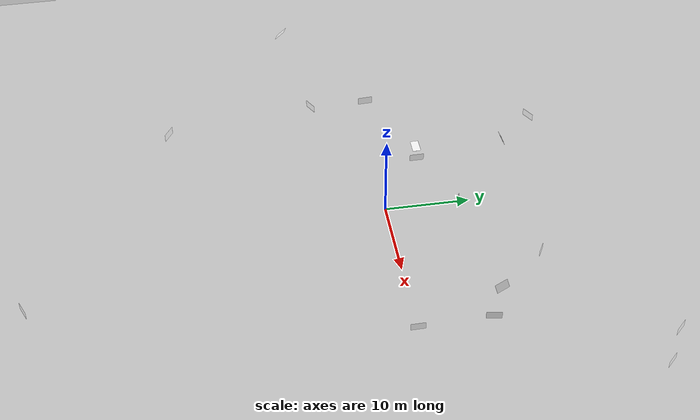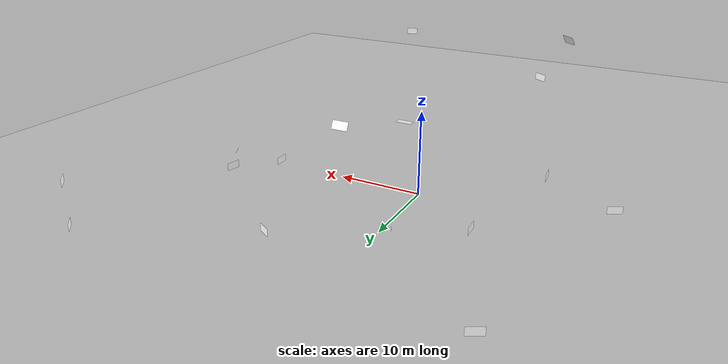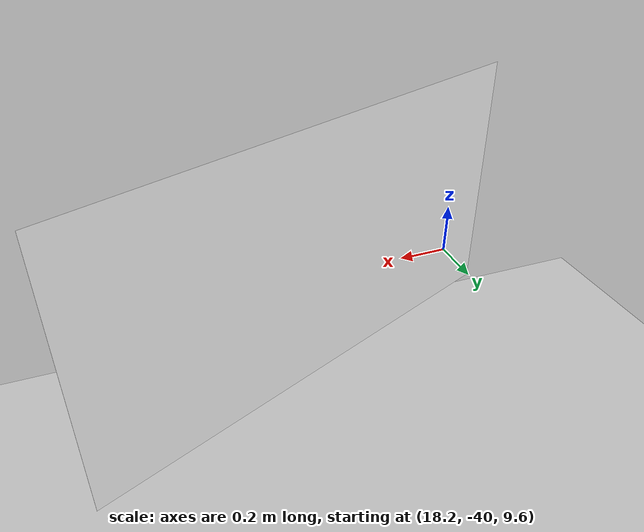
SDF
<sdf version="1.6">
 <world name="simslides">
  <plugin filename="ignition-gazebo-physics-system" name="ignition::gazebo::systems::Physics"/>
  <plugin filename="ignition-gazebo-user-commands-system" name="ignition::gazebo::systems::UserCommands"/>
  <plugin filename="ignition-gazebo-scene-broadcaster-system" name="ignition::gazebo::systems::SceneBroadcaster"/>
  <plugin filename="ignition-gazebo-sensors-system" name="ignition::gazebo::systems::Sensors">
   <engine>ogre</engine>
  </plugin>
  <light type="directional" name="sun">
   <pose>0 0 10 0 0 0</pose>
   <diffuse>0.3 0.3 0.3 1</diffuse>
   <specular>0 0 0 1</specular>
   <attenuation>
    <range>1000</range>
    <constant>0.9</constant>
    <linear>0.01</linear>
    <quadratic>0.001</quadratic>
   </attenuation>
   <direction>-0.5 0.1 -0.9</direction>
  </light>
  <include><uri>https://fuel.ignitionrobotics.org/1.0/OpenRobotics/models/Ground Plane</uri></include>
  <include>
   <pose>-0.9 9 0 0 0 -0.73</pose>
   <uri>https://fuel.ignitionrobotics.org/1.0/chapulina/models/Extinguisher PBR</uri>
  </include>
  <model name="slide-0">
   <pose>-12.86 -10.25 17 -0.45 0 -0.74</pose>
   <static>1</static>
   <link name="link">
    <pose>0 0 0.45 0 0 0</pose>
    <visual name="visual">
     <cast_shadows>0</cast_shadows>
     <geometry><box><size>1.7 0.001 0.9</size></box></geometry>
     <material>
      <diffuse>1 1 1 1</diffuse>
      <emissive>0.5 0.5 0.5 1</emissive>
      <pbr>
       <metal><albedo_map>slides/slide-0.png</albedo_map><emissive_map>slides/slide-0.png</emissive_map></metal>
      </pbr>
     </material>
    </visual>
   </link>
  </model>
  <model name="slide-1">
   <pose>-14 0 5 0 0 -1.52</pose>
   <static>1</static>
   <link name="link">
    <pose>0 0 0.45 0 0 0</pose>
    <visual name="visual">
     <cast_shadows>0</cast_shadows>
     <geometry><box><size>1.7 0.001 0.9</size></box></geometry>
     <material>
      <diffuse>1 1 1 1</diffuse>
      <emissive>0.5 0.5 0.5 1</emissive>
      <pbr>
       <metal><albedo_map>slides/slide-1.png</albedo_map><emissive_map>slides/slide-1.png</emissive_map></metal>
      </pbr>
     </material>
    </visual>
   </link>
  </model>
  <model name="slide-2">
   <pose>10 16 0 0 0 2.63</pose>
   <static>1</static>
   <link name="link">
    <pose>0 0 0.45 0 0 0</pose>
    <visual name="visual">
     <cast_shadows>0</cast_shadows>
     <geometry><box><size>1.7 0.001 0.9</size></box></geometry>
     <material>
      <diffuse>1 1 1 1</diffuse>
      <emissive>0.5 0.5 0.5 1</emissive>
      <pbr>
       <metal><albedo_map>slides/slide-2.png</albedo_map><emissive_map>slides/slide-2.png</emissive_map></metal>
      </pbr>
     </material>
    </visual>
   </link>
  </model>
  <model name="slide-3">
   <pose>20.4 7.8 1.8 0 0 1.4</pose>
   <static>1</static>
   <link name="link">
    <pose>0 0 0.45 0 0 0</pose>
    <visual name="visual">
     <cast_shadows>0</cast_shadows>
     <geometry><box><size>1.7 0.001 0.9</size></box></geometry>
     <material>
      <diffuse>1 1 1 1</diffuse>
      <emissive>0.5 0.5 0.5 1</emissive>
      <pbr>
       <metal><albedo_map>slides/slide-3.png</albedo_map><emissive_map>slides/slide-3.png</emissive_map></metal>
      </pbr>
     </material>
    </visual>
   </link>
  </model>
  <model name="slide-4">
   <pose>18.9 -39.6 9.5 0 0 0.4</pose>
   <static>1</static>
   <link name="link">
    <pose>0 0 0.45 0 0 0</pose>
    <visual name="visual">
     <cast_shadows>0</cast_shadows>
     <geometry><box><size>1.7 0.001 0.9</size></box></geometry>
     <material>
      <diffuse>1 1 1 1</diffuse>
      <emissive>0.5 0.5 0.5 1</emissive>
      <pbr>
       <metal><albedo_map>slides/slide-4.png</albedo_map><emissive_map>slides/slide-4.png</emissive_map></metal>
      </pbr>
     </material>
    </visual>
   </link>
  </model>
  <model name="slide-5">
   <pose>18.9 -39.6 9.5 0 0 0.4</pose>
   <static>1</static>
   <link name="link">
    <pose>0 0 0.45 0 0 0</pose>
    <visual name="visual">
     <cast_shadows>0</cast_shadows>
     <geometry><box><size>1.7 0.001 0.9</size></box></geometry>
     <material>
      <diffuse>1 1 1 1</diffuse>
      <emissive>0.5 0.5 0.5 1</emissive>
      <pbr>
       <metal><albedo_map>slides/slide-5.png</albedo_map><emissive_map>slides/slide-5.png</emissive_map></metal>
      </pbr>
     </material>
    </visual>
   </link>
  </model>
  <model name="slide-6">
   <pose>-7 -24 8.6 0 0 -0.55</pose>
   <static>1</static>
   <link name="link">
    <pose>0 0 0.45 0 0 0</pose>
    <visual name="visual">
     <transparency>0.01</transparency>
     <cast_shadows>0</cast_shadows>
     <geometry><box><size>1.7 0.001 0.9</size></box></geometry>
     <material>
      <diffuse>1 1 1 1</diffuse>
      <emissive>0.5 0.5 0.5 1</emissive>
      <pbr>
       <metal><albedo_map>slides/slide-6.png</albedo_map><emissive_map>slides/slide-6.png</emissive_map></metal>
      </pbr>
     </material>
    </visual>
   </link>
  </model>
  <model name="slide-7">
   <pose>-20.3 -6 0 0 0 0.5</pose>
   <static>1</static>
   <link name="link">
    <pose>0 0 0.45 0 0 0</pose>
    <visual name="visual">
     <cast_shadows>0</cast_shadows>
     <geometry><box><size>1.7 0.001 0.9</size></box></geometry>
     <material>
      <diffuse>1 1 1 1</diffuse>
      <emissive>0.5 0.5 0.5 1</emissive>
      <pbr>
       <metal><albedo_map>slides/slide-7.png</albedo_map><emissive_map>slides/slide-7.png</emissive_map></metal>
      </pbr>
     </material>
    </visual>
   </link>
  </model>
  <model name="slide-8">
   <pose>3.2 12.5 11.3 -0.46 0 -3.11</pose>
   <static>1</static>
   <link name="link">
    <pose>0 0 0.45 0 0 0</pose>
    <visual name="visual">
     <cast_shadows>0</cast_shadows>
     <transparency>0.01</transparency>
     <geometry><box><size>1.7 0.001 0.9</size></box></geometry>
     <material>
      <diffuse>1 1 1 1</diffuse>
      <emissive>0.5 0.5 0.5 1</emissive>
      <pbr>
       <metal><albedo_map>slides/slide-8.png</albedo_map><emissive_map>slides/slide-8.png</emissive_map></metal>
      </pbr>
     </material>
    </visual>
   </link>
  </model>
  <model name="slide-9">
   <pose>-8.15 5.4 0 0 0 -1.57</pose>
   <static>1</static>
   <link name="link">
    <pose>0 0 0.45 0 0 0</pose>
    <visual name="visual">
     <cast_shadows>0</cast_shadows>
     <transparency>0.01</transparency>
     <geometry><box><size>1.7 0.001 0.9</size></box></geometry>
     <material>
      <diffuse>1 1 1 1</diffuse>
      <emissive>0.5 0.5 0.5 1</emissive>
      <pbr>
       <metal><albedo_map>slides/slide-9.png</albedo_map><emissive_map>slides/slide-9.png</emissive_map></metal>
      </pbr>
     </material>
    </visual>
   </link>
  </model>
  <model name="slide-10">
   <pose>-14 21 0 0 0 -2.64</pose>
   <static>1</static>
   <link name="link">
    <pose>0 0 0.45 0 0 0</pose>
    <visual name="visual">
     <cast_shadows>0</cast_shadows>
     <geometry><box><size>1.7 0.001 0.9</size></box></geometry>
     <material>
      <diffuse>1 1 1 1</diffuse>
      <emissive>0.5 0.5 0.5 1</emissive>
      <pbr>
       <metal><albedo_map>slides/slide-10.png</albedo_map><emissive_map>slides/slide-10.png</emissive_map></metal>
      </pbr>
     </material>
    </visual>
   </link>
  </model>
  <model name="slide-11">
   <pose>0.55 2.73 9.71 -1.54 0 0</pose>
   <static>1</static>
   <link name="link">
    <pose>0 0 0.45 0 0 0</pose>
    <visual name="visual">
     <cast_shadows>0</cast_shadows>
     <transparency>0.01</transparency>
     <geometry><box><size>1.7 0.001 0.9</size></box></geometry>
     <material>
      <diffuse>1 1 1 1</diffuse>
      <emissive>0.5 0.5 0.5 1</emissive>
      <pbr>
       <metal><albedo_map>slides/slide-11.png</albedo_map><emissive_map>slides/slide-11.png</emissive_map></metal>
      </pbr>
     </material>
    </visual>
   </link>
  </model>
  <model name="slide-12">
   <pose>19 0 0 0 0 1.57</pose>
   <static>1</static>
   <link name="link">
    <pose>0 0 0.45 0 0 0</pose>
    <visual name="visual">
     <cast_shadows>0</cast_shadows>
     <geometry><box><size>1.7 0.001 0.9</size></box></geometry>
     <material>
      <diffuse>1 1 1 1</diffuse>
      <emissive>0.5 0.5 0.5 1</emissive>
      <pbr>
       <metal><albedo_map>slides/slide-12.png</albedo_map><emissive_map>slides/slide-12.png</emissive_map></metal>
      </pbr>
     </material>
    </visual>
   </link>
  </model>
  <model name="slide-13">
   <pose>28 25 0 0 0 -0.8</pose>
   <static>1</static>
   <link name="link">
    <pose>0 0 0.45 0 0 0</pose>
    <visual name="visual">
     <cast_shadows>0</cast_shadows>
     <transparency>0.01</transparency>
     <geometry><box><size>1.7 0.001 0.9</size></box></geometry>
     <material>
      <diffuse>1 1 1 1</diffuse>
      <emissive>0.5 0.5 0.5 1</emissive>
      <pbr>
       <metal><albedo_map>slides/slide-13.png</albedo_map><emissive_map>slides/slide-13.png</emissive_map></metal>
      </pbr>
     </material>
    </visual>
   </link>
  </model>
  <model name="slide-14">
   <pose>28 25 5 0 0 -0.8</pose>
   <static>1</static>
   <link name="link">
    <pose>0 0 0.45 0 0 0</pose>
    <visual name="visual">
     <cast_shadows>0</cast_shadows>
     <geometry><box><size>1.7 0.001 0.9</size></box></geometry>
     <material>
      <diffuse>1 1 1 1</diffuse>
      <emissive>0.5 0.5 0.5 1</emissive>
      <pbr>
       <metal><albedo_map>slides/slide-14.png</albedo_map><emissive_map>slides/slide-14.png</emissive_map></metal>
      </pbr>
     </material>
    </visual>
   </link>
  </model>
  <model name="slide-15">
   <pose>19 9 4.408 -0.5499 0 2.04</pose>
   <static>1</static>
   <link name="link">
    <pose>0 0 0.45 0 0 0</pose>
    <visual name="visual">
     <cast_shadows>0</cast_shadows>
     <transparency>0.01</transparency>
     <geometry><box><size>1.7 0.001 0.9</size></box></geometry>
     <material>
      <diffuse>1 1 1 1</diffuse>
      <emissive>0.5 0.5 0.5 1</emissive>
      <pbr>
       <metal><albedo_map>slides/slide-15.png</albedo_map><emissive_map>slides/slide-15.png</emissive_map></metal>
      </pbr>
     </material>
    </visual>
   </link>
  </model>
 </world>
</sdf>

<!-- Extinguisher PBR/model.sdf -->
<sdf version="1.6">
    <model name="Extinguisher PBR">
        <static>true</static>
        <link name="link">
            <collision name="collision">
                <geometry>
                    <mesh>
                        <uri>meshes/extinguisher.dae</uri>
                    </mesh>
                </geometry>
            </collision>
            <visual name="visual">
                <geometry>
                    <mesh>
                        <uri>meshes/extinguisher.dae</uri>
                    </mesh>
                </geometry>
                <material>
                    <diffuse>1.0 1.0 1.0</diffuse>
                    <specular>1.0 1.0 1.0</specular>
                    <pbr>
                        <metal>
                            <albedo_map>models://Extinguisher PBR/materials/textures/extinguisher_albedo.png</albedo_map>
                            <normal_map>models://Extinguisher PBR/materials/textures/extinguisher_normal.png</normal_map>
                            <metalness_map>models://Extinguisher PBR/materials/textures/extinguisher_metalness.png</metalness_map>
                            <roughness_map>models://Extinguisher PBR/materials/textures/extinguisher_roughness.png</roughness_map>
                            <environment_map>models://Extinguisher PBR/materials/textures/fort_point.dds</environment_map>
                        </metal>
                    </pbr>
                </material>
            </visual>
        </link>
    </model>
</sdf>
